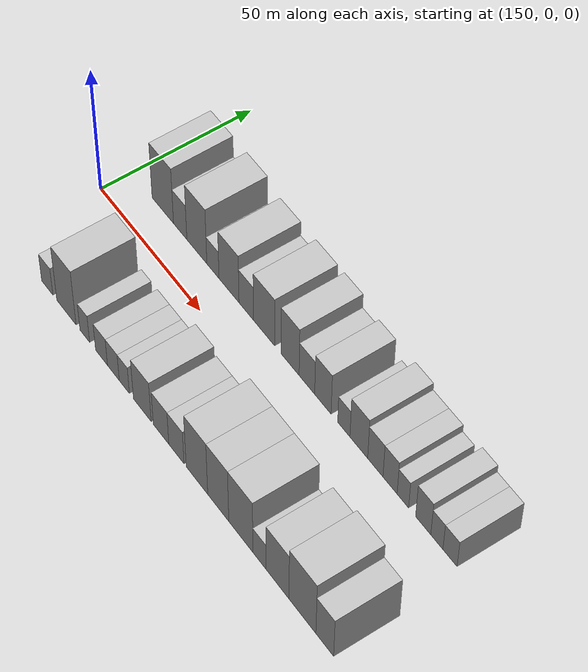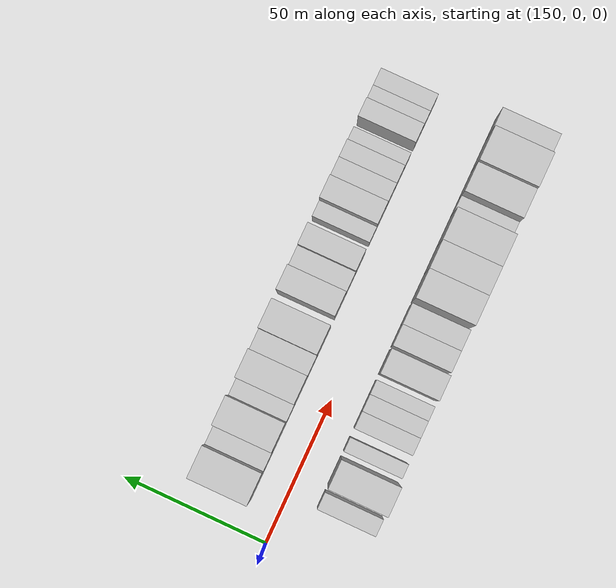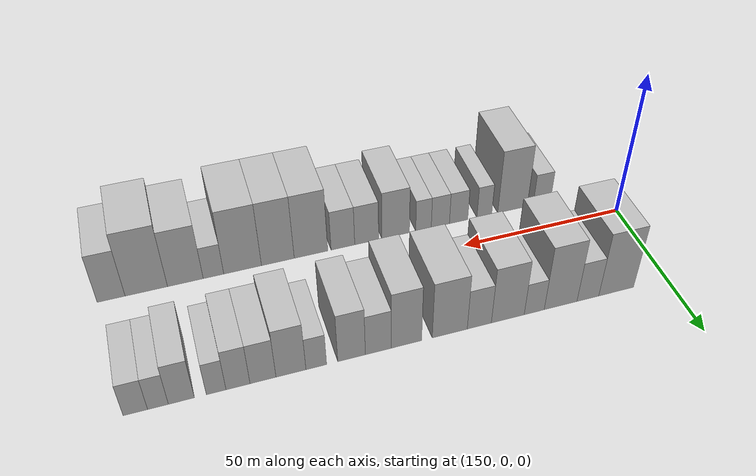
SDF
<sdf version="1.6">
 <world name="default">
  <model name="building_16">
   <static>1</static>
   <pose>165.9656 20.0000 0 0.000000 0.000000 1.570796</pose>
   <link name="link">
    <pose>0 0 12.00 0 0 0</pose>
    <collision name="collision"><geometry><box><size>20.0000 10.8410 24.0000</size></box></geometry></collision>
    <visual name="visual">
     <cast_shadows>0</cast_shadows>
     <geometry><box><size>20.0000 10.8410 24.0000</size></box></geometry>
     <material>
      <script>
       <uri>model://HANNAS_wall/materials/scripts</uri>
       <uri>model://HANNAS_wall/materials/textures</uri>
       <name>vrc/HANNAS_wall</name>
      </script>
     </material>
    </visual>
   </link>
  </model>
  <model name="building_17">
   <static>1</static>
   <pose>174.7330 20.0000 0 0.000000 0.000000 1.570796</pose>
   <link name="link">
    <pose>0 0 7.50 0 0 0</pose>
    <collision name="collision"><geometry><box><size>20.0000 6.6937 15.0000</size></box></geometry></collision>
    <visual name="visual">
     <cast_shadows>0</cast_shadows>
     <geometry><box><size>20.0000 6.6937 15.0000</size></box></geometry>
     <material>
      <script>
       <uri>model://HANNAS_wall/materials/scripts</uri>
       <uri>model://HANNAS_wall/materials/textures</uri>
       <name>vrc/HANNAS_wall</name>
      </script>
     </material>
    </visual>
   </link>
  </model>
  <model name="building_18">
   <static>1</static>
   <pose>183.0394 20.0000 0 0.000000 0.000000 1.570796</pose>
   <link name="link">
    <pose>0 0 12.00 0 0 0</pose>
    <collision name="collision"><geometry><box><size>20.0000 9.9190 24.0000</size></box></geometry></collision>
    <visual name="visual">
     <cast_shadows>0</cast_shadows>
     <geometry><box><size>20.0000 9.9190 24.0000</size></box></geometry>
     <material>
      <script>
       <uri>model://HANNAS_wall/materials/scripts</uri>
       <uri>model://HANNAS_wall/materials/textures</uri>
       <name>vrc/HANNAS_wall</name>
      </script>
     </material>
    </visual>
   </link>
  </model>
  <model name="building_19">
   <static>1</static>
   <pose>190.9892 20.0000 0 0.000000 0.000000 1.570796</pose>
   <link name="link">
    <pose>0 0 6.00 0 0 0</pose>
    <collision name="collision"><geometry><box><size>20.0000 5.9807 12.0000</size></box></geometry></collision>
    <visual name="visual">
     <cast_shadows>0</cast_shadows>
     <geometry><box><size>20.0000 5.9807 12.0000</size></box></geometry>
     <material>
      <script>
       <uri>model://HANNAS_wall/materials/scripts</uri>
       <uri>model://HANNAS_wall/materials/textures</uri>
       <name>vrc/HANNAS_wall</name>
      </script>
     </material>
    </visual>
   </link>
  </model>
  <model name="building_20">
   <static>1</static>
   <pose>198.8270 20.0000 0 0.000000 0.000000 1.570796</pose>
   <link name="link">
    <pose>0 0 10.50 0 0 0</pose>
    <collision name="collision"><geometry><box><size>20.0000 9.6948 21.0000</size></box></geometry></collision>
    <visual name="visual">
     <cast_shadows>0</cast_shadows>
     <geometry><box><size>20.0000 9.6948 21.0000</size></box></geometry>
     <material>
      <script>
       <uri>model://HANNAS_wall/materials/scripts</uri>
       <uri>model://HANNAS_wall/materials/textures</uri>
       <name>vrc/HANNAS_wall</name>
      </script>
     </material>
    </visual>
   </link>
  </model>
  <model name="building_21">
   <static>1</static>
   <pose>207.1692 20.0000 0 0.000000 0.000000 1.570796</pose>
   <link name="link">
    <pose>0 0 7.50 0 0 0</pose>
    <collision name="collision"><geometry><box><size>20.0000 6.9896 15.0000</size></box></geometry></collision>
    <visual name="visual">
     <cast_shadows>0</cast_shadows>
     <geometry><box><size>20.0000 6.9896 15.0000</size></box></geometry>
     <material>
      <script>
       <uri>model://HANNAS_wall/materials/scripts</uri>
       <uri>model://HANNAS_wall/materials/textures</uri>
       <name>vrc/HANNAS_wall</name>
      </script>
     </material>
    </visual>
   </link>
  </model>
  <model name="building_22">
   <static>1</static>
   <pose>215.6674 20.0000 0 0.000000 0.000000 1.570796</pose>
   <link name="link">
    <pose>0 0 10.50 0 0 0</pose>
    <collision name="collision"><geometry><box><size>20.0000 10.0068 21.0000</size></box></geometry></collision>
    <visual name="visual">
     <cast_shadows>0</cast_shadows>
     <geometry><box><size>20.0000 10.0068 21.0000</size></box></geometry>
     <material>
      <script>
       <uri>model://HANNAS_wall/materials/scripts</uri>
       <uri>model://HANNAS_wall/materials/textures</uri>
       <name>vrc/HANNAS_wall</name>
      </script>
     </material>
    </visual>
   </link>
  </model>
  <model name="building_23">
   <static>1</static>
   <pose>227.8896 20.0000 0 0.000000 0.000000 1.570796</pose>
   <link name="link">
    <pose>0 0 10.50 0 0 0</pose>
    <collision name="collision"><geometry><box><size>20.0000 8.4376 21.0000</size></box></geometry></collision>
    <visual name="visual">
     <cast_shadows>0</cast_shadows>
     <geometry><box><size>20.0000 8.4376 21.0000</size></box></geometry>
     <material>
      <script>
       <uri>model://HANNAS_wall/materials/scripts</uri>
       <uri>model://HANNAS_wall/materials/textures</uri>
       <name>vrc/HANNAS_wall</name>
      </script>
     </material>
    </visual>
   </link>
  </model>
  <model name="building_24">
   <static>1</static>
   <pose>235.6966 20.0000 0 0.000000 0.000000 1.570796</pose>
   <link name="link">
    <pose>0 0 7.50 0 0 0</pose>
    <collision name="collision"><geometry><box><size>20.0000 7.1764 15.0000</size></box></geometry></collision>
    <visual name="visual">
     <cast_shadows>0</cast_shadows>
     <geometry><box><size>20.0000 7.1764 15.0000</size></box></geometry>
     <material>
      <script>
       <uri>model://HANNAS_wall/materials/scripts</uri>
       <uri>model://HANNAS_wall/materials/textures</uri>
       <name>vrc/HANNAS_wall</name>
      </script>
     </material>
    </visual>
   </link>
  </model>
  <model name="building_25">
   <static>1</static>
   <pose>243.0380 20.0000 0 0.000000 0.000000 1.570796</pose>
   <link name="link">
    <pose>0 0 9.00 0 0 0</pose>
    <collision name="collision"><geometry><box><size>20.0000 7.5064 18.0000</size></box></geometry></collision>
    <visual name="visual">
     <cast_shadows>0</cast_shadows>
     <geometry><box><size>20.0000 7.5064 18.0000</size></box></geometry>
     <material>
      <script>
       <uri>model://HANNAS_wall/materials/scripts</uri>
       <uri>model://HANNAS_wall/materials/textures</uri>
       <name>vrc/HANNAS_wall</name>
      </script>
     </material>
    </visual>
   </link>
  </model>
  <model name="building_26">
   <static>1</static>
   <pose>252.5489 20.0000 0 0.000000 0.000000 1.570796</pose>
   <link name="link">
    <pose>0 0 6.00 0 0 0</pose>
    <collision name="collision"><geometry><box><size>20.0000 5.5153 12.0000</size></box></geometry></collision>
    <visual name="visual">
     <cast_shadows>0</cast_shadows>
     <geometry><box><size>20.0000 5.5153 12.0000</size></box></geometry>
     <material>
      <script>
       <uri>model://HANNAS_wall/materials/scripts</uri>
       <uri>model://HANNAS_wall/materials/textures</uri>
       <name>vrc/HANNAS_wall</name>
      </script>
     </material>
    </visual>
   </link>
  </model>
  <model name="building_27">
   <static>1</static>
   <pose>259.2600 20.0000 0 0.000000 0.000000 1.570796</pose>
   <link name="link">
    <pose>0 0 9.00 0 0 0</pose>
    <collision name="collision"><geometry><box><size>20.0000 7.9069 18.0000</size></box></geometry></collision>
    <visual name="visual">
     <cast_shadows>0</cast_shadows>
     <geometry><box><size>20.0000 7.9069 18.0000</size></box></geometry>
     <material>
      <script>
       <uri>model://HANNAS_wall/materials/scripts</uri>
       <uri>model://HANNAS_wall/materials/textures</uri>
       <name>vrc/HANNAS_wall</name>
      </script>
     </material>
    </visual>
   </link>
  </model>
  <model name="building_28">
   <static>1</static>
   <pose>266.5928 20.0000 0 0.000000 0.000000 1.570796</pose>
   <link name="link">
    <pose>0 0 7.50 0 0 0</pose>
    <collision name="collision"><geometry><box><size>20.0000 6.7587 15.0000</size></box></geometry></collision>
    <visual name="visual">
     <cast_shadows>0</cast_shadows>
     <geometry><box><size>20.0000 6.7587 15.0000</size></box></geometry>
     <material>
      <script>
       <uri>model://HANNAS_wall/materials/scripts</uri>
       <uri>model://HANNAS_wall/materials/textures</uri>
       <name>vrc/HANNAS_wall</name>
      </script>
     </material>
    </visual>
   </link>
  </model>
  <model name="building_29">
   <static>1</static>
   <pose>273.0589 20.0000 0 0.000000 0.000000 1.570796</pose>
   <link name="link">
    <pose>0 0 7.50 0 0 0</pose>
    <collision name="collision"><geometry><box><size>20.0000 6.1735 15.0000</size></box></geometry></collision>
    <visual name="visual">
     <cast_shadows>0</cast_shadows>
     <geometry><box><size>20.0000 6.1735 15.0000</size></box></geometry>
     <material>
      <script>
       <uri>model://HANNAS_wall/materials/scripts</uri>
       <uri>model://HANNAS_wall/materials/textures</uri>
       <name>vrc/HANNAS_wall</name>
      </script>
     </material>
    </visual>
   </link>
  </model>
  <model name="building_30">
   <static>1</static>
   <pose>278.6506 20.0000 0 0.000000 0.000000 1.570796</pose>
   <link name="link">
    <pose>0 0 6.00 0 0 0</pose>
    <collision name="collision"><geometry><box><size>20.0000 5.0098 12.0000</size></box></geometry></collision>
    <visual name="visual">
     <cast_shadows>0</cast_shadows>
     <geometry><box><size>20.0000 5.0098 12.0000</size></box></geometry>
     <material>
      <script>
       <uri>model://HANNAS_wall/materials/scripts</uri>
       <uri>model://HANNAS_wall/materials/textures</uri>
       <name>vrc/HANNAS_wall</name>
      </script>
     </material>
    </visual>
   </link>
  </model>
  <model name="building_31">
   <static>1</static>
   <pose>287.4154 20.0000 0 0.000000 0.000000 1.570796</pose>
   <link name="link">
    <pose>0 0 7.50 0 0 0</pose>
    <collision name="collision"><geometry><box><size>20.0000 6.5198 15.0000</size></box></geometry></collision>
    <visual name="visual">
     <cast_shadows>0</cast_shadows>
     <geometry><box><size>20.0000 6.5198 15.0000</size></box></geometry>
     <material>
      <script>
       <uri>model://HANNAS_wall/materials/scripts</uri>
       <uri>model://HANNAS_wall/materials/textures</uri>
       <name>vrc/HANNAS_wall</name>
      </script>
     </material>
    </visual>
   </link>
  </model>
  <model name="building_32">
   <static>1</static>
   <pose>293.2483 20.0000 0 0.000000 0.000000 1.570796</pose>
   <link name="link">
    <pose>0 0 6.00 0 0 0</pose>
    <collision name="collision"><geometry><box><size>20.0000 5.1459 12.0000</size></box></geometry></collision>
    <visual name="visual">
     <cast_shadows>0</cast_shadows>
     <geometry><box><size>20.0000 5.1459 12.0000</size></box></geometry>
     <material>
      <script>
       <uri>model://HANNAS_wall/materials/scripts</uri>
       <uri>model://HANNAS_wall/materials/textures</uri>
       <name>vrc/HANNAS_wall</name>
      </script>
     </material>
    </visual>
   </link>
  </model>
  <model name="building_33">
   <static>1</static>
   <pose>298.8159 20.0000 0 0.000000 0.000000 1.570796</pose>
   <link name="link">
    <pose>0 0 6.00 0 0 0</pose>
    <collision name="collision"><geometry><box><size>20.0000 5.9893 12.0000</size></box></geometry></collision>
    <visual name="visual">
     <cast_shadows>0</cast_shadows>
     <geometry><box><size>20.0000 5.9893 12.0000</size></box></geometry>
     <material>
      <script>
       <uri>model://HANNAS_wall/materials/scripts</uri>
       <uri>model://HANNAS_wall/materials/textures</uri>
       <name>vrc/HANNAS_wall</name>
      </script>
     </material>
    </visual>
   </link>
  </model>
  <model name="building_51">
   <static>1</static>
   <pose>170.5029 -20.0000 0 0.000000 0.000000 1.570796</pose>
   <link name="link">
    <pose>0 0 6.00 0 0 0</pose>
    <collision name="collision"><geometry><box><size>20.0000 5.8171 12.0000</size></box></geometry></collision>
    <visual name="visual">
     <cast_shadows>0</cast_shadows>
     <geometry><box><size>20.0000 5.8171 12.0000</size></box></geometry>
     <material>
      <script>
       <uri>model://HANNAS_wall/materials/scripts</uri>
       <uri>model://HANNAS_wall/materials/textures</uri>
       <name>vrc/HANNAS_wall</name>
      </script>
     </material>
    </visual>
   </link>
  </model>
  <model name="building_52">
   <static>1</static>
   <pose>180.3146 -20.0000 0 0.000000 0.000000 1.570796</pose>
   <link name="link">
    <pose>0 0 12.00 0 0 0</pose>
    <collision name="collision"><geometry><box><size>20.0000 9.8064 24.0000</size></box></geometry></collision>
    <visual name="visual">
     <cast_shadows>0</cast_shadows>
     <geometry><box><size>20.0000 9.8064 24.0000</size></box></geometry>
     <material>
      <script>
       <uri>model://HANNAS_wall/materials/scripts</uri>
       <uri>model://HANNAS_wall/materials/textures</uri>
       <name>vrc/HANNAS_wall</name>
      </script>
     </material>
    </visual>
   </link>
  </model>
  <model name="building_53">
   <static>1</static>
   <pose>189.6406 -20.0000 0 0.000000 0.000000 1.570796</pose>
   <link name="link">
    <pose>0 0 6.00 0 0 0</pose>
    <collision name="collision"><geometry><box><size>20.0000 4.8457 12.0000</size></box></geometry></collision>
    <visual name="visual">
     <cast_shadows>0</cast_shadows>
     <geometry><box><size>20.0000 4.8457 12.0000</size></box></geometry>
     <material>
      <script>
       <uri>model://HANNAS_wall/materials/scripts</uri>
       <uri>model://HANNAS_wall/materials/textures</uri>
       <name>vrc/HANNAS_wall</name>
      </script>
     </material>
    </visual>
   </link>
  </model>
  <model name="building_54">
   <static>1</static>
   <pose>198.0218 -20.0000 0 0.000000 0.000000 1.570796</pose>
   <link name="link">
    <pose>0 0 6.00 0 0 0</pose>
    <collision name="collision"><geometry><box><size>20.0000 5.9168 12.0000</size></box></geometry></collision>
    <visual name="visual">
     <cast_shadows>0</cast_shadows>
     <geometry><box><size>20.0000 5.9168 12.0000</size></box></geometry>
     <material>
      <script>
       <uri>model://HANNAS_wall/materials/scripts</uri>
       <uri>model://HANNAS_wall/materials/textures</uri>
       <name>vrc/HANNAS_wall</name>
      </script>
     </material>
    </visual>
   </link>
  </model>
  <model name="building_55">
   <static>1</static>
   <pose>203.8933 -20.0000 0 0.000000 0.000000 1.570796</pose>
   <link name="link">
    <pose>0 0 6.00 0 0 0</pose>
    <collision name="collision"><geometry><box><size>20.0000 5.8261 12.0000</size></box></geometry></collision>
    <visual name="visual">
     <cast_shadows>0</cast_shadows>
     <geometry><box><size>20.0000 5.8261 12.0000</size></box></geometry>
     <material>
      <script>
       <uri>model://HANNAS_wall/materials/scripts</uri>
       <uri>model://HANNAS_wall/materials/textures</uri>
       <name>vrc/HANNAS_wall</name>
      </script>
     </material>
    </visual>
   </link>
  </model>
  <model name="building_56">
   <static>1</static>
   <pose>209.2718 -20.0000 0 0.000000 0.000000 1.570796</pose>
   <link name="link">
    <pose>0 0 6.00 0 0 0</pose>
    <collision name="collision"><geometry><box><size>20.0000 4.9309 12.0000</size></box></geometry></collision>
    <visual name="visual">
     <cast_shadows>0</cast_shadows>
     <geometry><box><size>20.0000 4.9309 12.0000</size></box></geometry>
     <material>
      <script>
       <uri>model://HANNAS_wall/materials/scripts</uri>
       <uri>model://HANNAS_wall/materials/textures</uri>
       <name>vrc/HANNAS_wall</name>
      </script>
     </material>
    </visual>
   </link>
  </model>
  <model name="building_57">
   <static>1</static>
   <pose>218.0424 -20.0000 0 0.000000 0.000000 1.570796</pose>
   <link name="link">
    <pose>0 0 9.00 0 0 0</pose>
    <collision name="collision"><geometry><box><size>20.0000 8.6102 18.0000</size></box></geometry></collision>
    <visual name="visual">
     <cast_shadows>0</cast_shadows>
     <geometry><box><size>20.0000 8.6102 18.0000</size></box></geometry>
     <material>
      <script>
       <uri>model://HANNAS_wall/materials/scripts</uri>
       <uri>model://HANNAS_wall/materials/textures</uri>
       <name>vrc/HANNAS_wall</name>
      </script>
     </material>
    </visual>
   </link>
  </model>
  <model name="building_58">
   <static>1</static>
   <pose>227.0455 -20.0000 0 0.000000 0.000000 1.570796</pose>
   <link name="link">
    <pose>0 0 7.50 0 0 0</pose>
    <collision name="collision"><geometry><box><size>20.0000 7.3959 15.0000</size></box></geometry></collision>
    <visual name="visual">
     <cast_shadows>0</cast_shadows>
     <geometry><box><size>20.0000 7.3959 15.0000</size></box></geometry>
     <material>
      <script>
       <uri>model://HANNAS_wall/materials/scripts</uri>
       <uri>model://HANNAS_wall/materials/textures</uri>
       <name>vrc/HANNAS_wall</name>
      </script>
     </material>
    </visual>
   </link>
  </model>
  <model name="building_59">
   <static>1</static>
   <pose>234.3477 -20.0000 0 0.000000 0.000000 1.570796</pose>
   <link name="link">
    <pose>0 0 7.50 0 0 0</pose>
    <collision name="collision"><geometry><box><size>20.0000 7.2085 15.0000</size></box></geometry></collision>
    <visual name="visual">
     <cast_shadows>0</cast_shadows>
     <geometry><box><size>20.0000 7.2085 15.0000</size></box></geometry>
     <material>
      <script>
       <uri>model://HANNAS_wall/materials/scripts</uri>
       <uri>model://HANNAS_wall/materials/textures</uri>
       <name>vrc/HANNAS_wall</name>
      </script>
     </material>
    </visual>
   </link>
  </model>
  <model name="building_60">
   <static>1</static>
   <pose>243.9808 -20.0000 0 0.000000 0.000000 1.570796</pose>
   <link name="link">
    <pose>0 0 12.00 0 0 0</pose>
    <collision name="collision"><geometry><box><size>20.0000 10.0577 24.0000</size></box></geometry></collision>
    <visual name="visual">
     <cast_shadows>0</cast_shadows>
     <geometry><box><size>20.0000 10.0577 24.0000</size></box></geometry>
     <material>
      <script>
       <uri>model://HANNAS_wall/materials/scripts</uri>
       <uri>model://HANNAS_wall/materials/textures</uri>
       <name>vrc/HANNAS_wall</name>
      </script>
     </material>
    </visual>
   </link>
  </model>
  <model name="building_61">
   <static>1</static>
   <pose>253.8539 -20.0000 0 0.000000 0.000000 1.570796</pose>
   <link name="link">
    <pose>0 0 12.00 0 0 0</pose>
    <collision name="collision"><geometry><box><size>20.0000 9.6887 24.0000</size></box></geometry></collision>
    <visual name="visual">
     <cast_shadows>0</cast_shadows>
     <geometry><box><size>20.0000 9.6887 24.0000</size></box></geometry>
     <material>
      <script>
       <uri>model://HANNAS_wall/materials/scripts</uri>
       <uri>model://HANNAS_wall/materials/textures</uri>
       <name>vrc/HANNAS_wall</name>
      </script>
     </material>
    </visual>
   </link>
  </model>
  <model name="building_62">
   <static>1</static>
   <pose>264.1742 -20.0000 0 0.000000 0.000000 1.570796</pose>
   <link name="link">
    <pose>0 0 12.00 0 0 0</pose>
    <collision name="collision"><geometry><box><size>20.0000 10.9518 24.0000</size></box></geometry></collision>
    <visual name="visual">
     <cast_shadows>0</cast_shadows>
     <geometry><box><size>20.0000 10.9518 24.0000</size></box></geometry>
     <material>
      <script>
       <uri>model://HANNAS_wall/materials/scripts</uri>
       <uri>model://HANNAS_wall/materials/textures</uri>
       <name>vrc/HANNAS_wall</name>
      </script>
     </material>
    </visual>
   </link>
  </model>
  <model name="building_63">
   <static>1</static>
   <pose>272.5870 -20.0000 0 0.000000 0.000000 1.570796</pose>
   <link name="link">
    <pose>0 0 6.00 0 0 0</pose>
    <collision name="collision"><geometry><box><size>20.0000 5.8738 12.0000</size></box></geometry></collision>
    <visual name="visual">
     <cast_shadows>0</cast_shadows>
     <geometry><box><size>20.0000 5.8738 12.0000</size></box></geometry>
     <material>
      <script>
       <uri>model://HANNAS_wall/materials/scripts</uri>
       <uri>model://HANNAS_wall/materials/textures</uri>
       <name>vrc/HANNAS_wall</name>
      </script>
     </material>
    </visual>
   </link>
  </model>
  <model name="building_64">
   <static>1</static>
   <pose>280.5660 -20.0000 0 0.000000 0.000000 1.570796</pose>
   <link name="link">
    <pose>0 0 10.50 0 0 0</pose>
    <collision name="collision"><geometry><box><size>20.0000 10.0842 21.0000</size></box></geometry></collision>
    <visual name="visual">
     <cast_shadows>0</cast_shadows>
     <geometry><box><size>20.0000 10.0842 21.0000</size></box></geometry>
     <material>
      <script>
       <uri>model://HANNAS_wall/materials/scripts</uri>
       <uri>model://HANNAS_wall/materials/textures</uri>
       <name>vrc/HANNAS_wall</name>
      </script>
     </material>
    </visual>
   </link>
  </model>
  <model name="building_65">
   <static>1</static>
   <pose>291.4853 -20.0000 0 0.000000 0.000000 1.570796</pose>
   <link name="link">
    <pose>0 0 12.00 0 0 0</pose>
    <collision name="collision"><geometry><box><size>20.0000 11.7543 24.0000</size></box></geometry></collision>
    <visual name="visual">
     <cast_shadows>0</cast_shadows>
     <geometry><box><size>20.0000 11.7543 24.0000</size></box></geometry>
     <material>
      <script>
       <uri>model://HANNAS_wall/materials/scripts</uri>
       <uri>model://HANNAS_wall/materials/textures</uri>
       <name>vrc/HANNAS_wall</name>
      </script>
     </material>
    </visual>
   </link>
  </model>
  <model name="building_66">
   <static>1</static>
   <pose>301.1720 -20.0000 0 0.000000 0.000000 1.570796</pose>
   <link name="link">
    <pose>0 0 9.00 0 0 0</pose>
    <collision name="collision"><geometry><box><size>20.0000 7.6192 18.0000</size></box></geometry></collision>
    <visual name="visual">
     <cast_shadows>0</cast_shadows>
     <geometry><box><size>20.0000 7.6192 18.0000</size></box></geometry>
     <material>
      <script>
       <uri>model://HANNAS_wall/materials/scripts</uri>
       <uri>model://HANNAS_wall/materials/textures</uri>
       <name>vrc/HANNAS_wall</name>
      </script>
     </material>
    </visual>
   </link>
  </model>
 </world>
</sdf>
